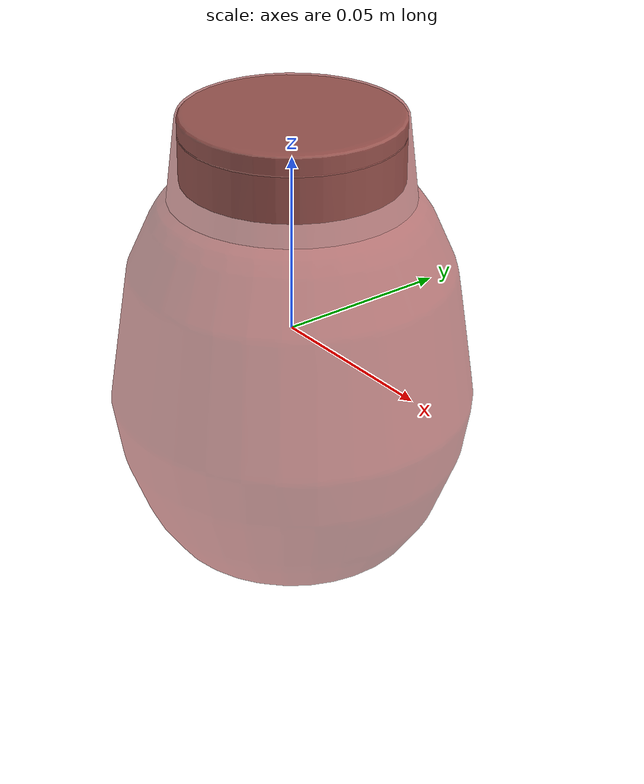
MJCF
<mujoco model="model">
  <option timestep="0.002" gravity="0.0 0.0 -9.81"/>
  <compiler angle="radian"/>
  <asset>
    <mesh file="visual/HoneyBottle002.obj" name="HoneyBottle002_vis"/>
    <mesh file="visual/Clear001.obj" name="HoneyBottle002_Clear001_vis"/>
    <mesh file="visual/Clear002.obj" name="HoneyBottle002_Clear002_vis"/>
    <texture file="visual/T_BC001.png" name="HoneyBottle002_Clear001_material" type="2d"/>
    <material name="HoneyBottle002_Clear001_material" rgba="1 1 1 0.20000000298023224" texture="HoneyBottle002_Clear001_material" shininess="0.5" specular="0.3103448502657381"/>
    <texture file="visual/T_BC001.png" name="HoneyBottle002_material" type="2d"/>
    <material name="HoneyBottle002_material" rgba="1 1 1 1.0" texture="HoneyBottle002_material" shininess="0.5" specular="0.3103448502657381"/>
    <texture file="visual/T_BC001.png" name="HoneyBottle002_Clear002_material" type="2d"/>
    <material name="HoneyBottle002_Clear002_material" rgba="1 1 1 0.800000011920929" texture="HoneyBottle002_Clear002_material" shininess="0.5" specular="0.3103448502657381"/>
    <mesh file="collision/collision_mesh_collision_0.obj" name="HoneyBottle002_collision_mesh_0"/>
    <mesh file="collision/collision_mesh_collision_1.obj" name="HoneyBottle002_collision_mesh_1"/>
  </asset>
  <default>
    <default class="visual">
      <geom conaffinity="0" contype="0" group="1" type="mesh"/>
    </default>
    <default class="collision">
      <geom group="0" rgba="0.5 0 0 0.5" density="1.0" solref="0.004 1" solimp="0.998 0.998 0.001"/>
    </default>
    <default class="spawn">
      <geom group="0" rgba="1 1 1 0.5" contype="0" conaffinity="0"/>
      <site group="0" rgba="1 1 1 0.5"/>
    </default>
    <default class="region">
      <geom group="1" conaffinity="0" contype="0" rgba="0 1 0 0" mass="0"/>
    </default>
  </default>
  <worldbody>
    <body>
      <body name="object">
        <geom mesh="HoneyBottle002_Clear001_vis" type="mesh" solimp="0.998 0.998 0.001" solref="0.001 1" friction="0.95 0.3 0.1" class="visual" material="HoneyBottle002_Clear001_material"/>
        <body name="HoneyBottle002">
          <geom mesh="HoneyBottle002_vis" type="mesh" solimp="0.998 0.998 0.001" solref="0.001 1" friction="0.95 0.3 0.1" class="visual" material="HoneyBottle002_material"/>
        </body>
        <body name="HoneyBottle002_Clear002">
          <geom mesh="HoneyBottle002_Clear002_vis" type="mesh" solimp="0.998 0.998 0.001" solref="0.001 1" friction="0.95 0.3 0.1" class="visual" material="HoneyBottle002_Clear002_material"/>
        </body>
        <geom class="region" name="reg_bbox" type="box" pos="-1.5000000002513003e-08 1.5000000002513003e-08 0.0" size="0.050149215 0.050149215 0.06286499"/>
        <geom mesh="HoneyBottle002_collision_mesh_0" type="mesh" class="collision"/>
        <geom mesh="HoneyBottle002_collision_mesh_1" type="mesh" class="collision"/>
      </body>
    </body>
  </worldbody>
  <actuator/>
</mujoco>
